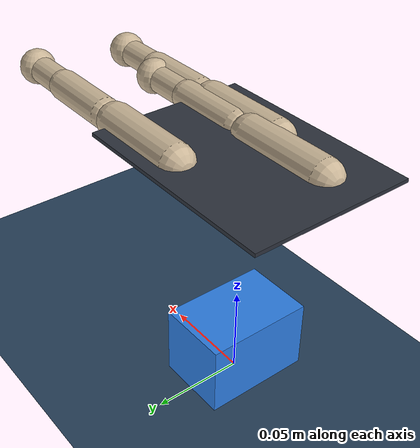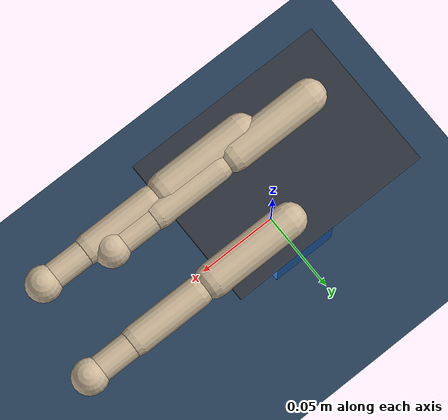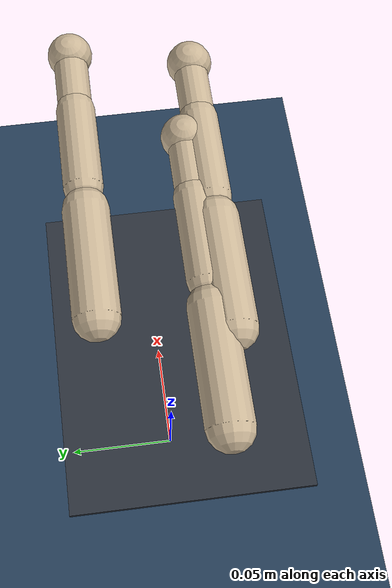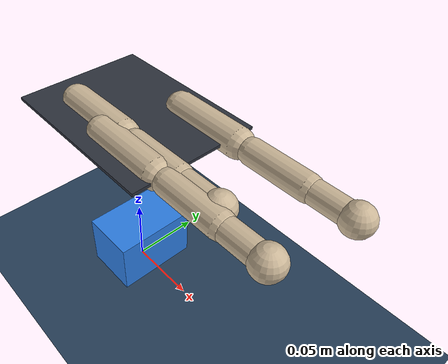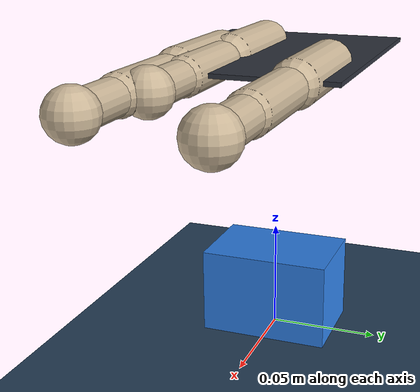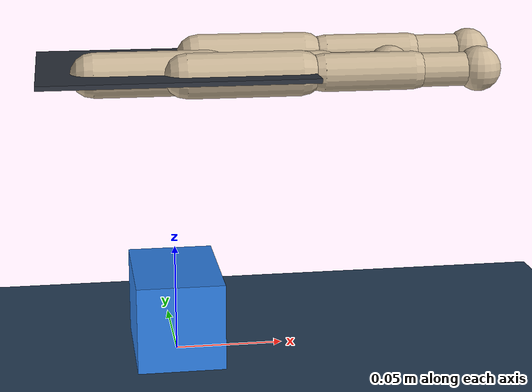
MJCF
<mujoco model="scene_prism2_tn0d0054p0d0109p0d0107_ip0d0147n0d0019p0d0104_mp0d0043p0d0052p0d0098">
  <compiler angle="radian" autolimits="true" />
  <option timestep="0.002" gravity="0 0 -9.81" integrator="implicitfast" />
  <visual>
    <headlight ambient=".4 .4 .4" diffuse=".8 .8 .8" specular="0.1 0.1 0.1" />
    <map znear=".01" />
    <quality shadowsize="2048" />
    <global elevation="-15" />
  </visual>
  <default>
    <geom friction="1.0 0.05 0.001" solref="0.01 1" solimp="0.95 0.99 0.001" />
    <motor ctrlrange="-1 1" ctrllimited="true" />
    <default class="pose">
      <joint damping="2.0" armature="0.01" />
      <position kp="4000" kv="100" forcerange="-1000 1000" />
    </default>
    <default class="ctrl">
      <joint damping="0.5" armature="0.001" />
      <position kp="30" kv="0.5" gear="1" forcerange="-10 10" ctrlrange="-1 1" />
    </default>
  </default>
  <asset>
    <texture type="skybox" builtin="gradient" rgb1="0.3 0.5 0.7" rgb2="0 0 0" width="512" height="3072" />
    <texture type="2d" name="groundplane" builtin="checker" mark="edge" rgb1="0.2 0.3 0.4" rgb2="0.1 0.2 0.3" markrgb="0.8 0.8 0.8" width="300" height="300" />
    <material name="groundplane" texture="groundplane" texuniform="true" texrepeat="5 5" reflectance="0.2" />
    <texture name="grid" type="2d" builtin="checker" rgb1="0.15 0.15 0.15" rgb2="0.25 0.25 0.25" width="256" height="256" />
    <material name="table_mat" texture="grid" texrepeat="3 3" reflectance="0.2" />
    <material name="palm_mat" rgba="0.18 0.2 0.24 1" />
    <material name="finger_mat" rgba="0.8 0.72 0.6 1" />
    <material name="object_mat" rgba="0.18 0.5 0.9 1" />
  </asset>
  <worldbody>
    <light pos="0 0 1.5" dir="0 0 -1" directional="true" diffuse=".6 .6 .6" specular=".2 .2 .2" />
    <light pos="0.5 0.5 1.0" dir="-1 -1 -1" directional="true" diffuse=".4 .4 .4" specular=".1 .1 .1" />
    <geom name="floor" type="plane" size="1.5 1.5 0.1" material="groundplane" />
    <body name="cube" pos="0.000000 0.000000 0.020000">
      <freejoint />
      <geom type="box" size="0.020000 0.030000 0.020000" density="500" material="object_mat" />
    </body>
    <body gravcomp="1" name="palm_pose" pos="0 0 0.134">
      <joint class="pose" name="palm_px" type="slide" axis="1 0 0" range="-0.20 0.20" />
      <joint class="pose" name="palm_py" type="slide" axis="0 1 0" range="-0.20 0.20" />
      <joint class="pose" name="palm_pz" type="slide" axis="0 0 1" range="-0.15 0.35" />
      <joint class="pose" name="palm_rx" type="hinge" axis="1 0 0" range="-1.57 1.57" />
      <joint class="pose" name="palm_ry" type="hinge" axis="0 1 0" range="-1.57 1.57" />
      <joint class="pose" name="palm_rz" type="hinge" axis="0 0 1" range="-3.14 3.14" />
      <geom type="box" size="0.06 0.045 0.001" material="palm_mat" />
      <body name="thumb_mount" pos="-0.035388 -0.017105 0">
        <inertial pos="0 0 0" mass="0.001" diaginertia="1e-6 1e-6 1e-6" />
        <body name="thumb_yaw_frame">
          <inertial pos="0 0 0" mass="0.001" diaginertia="1e-6 1e-6 1e-6" />
          <joint class="ctrl" name="thumb_yaw" type="hinge" axis="1 0 0" range="-1.1 1.1" />
          <body name="thumb_mcp_frame">
            <joint class="ctrl" name="thumb_mcp" type="hinge" axis="0 1 0" range="0 3.14" />
            <geom type="capsule" fromto="0 0 0 0.05 0 0" size="0.010" material="finger_mat" />
            <body name="thumb_len_frame" pos="0.060706 0 0">
              <geom type="capsule" fromto="0 0 0 0.04 0 0" size="0.0085" material="finger_mat" />
              <body name="thumb_pip_frame" pos="0.04 0 0">
                <joint class="ctrl" name="thumb_pip" type="hinge" axis="0 1 0" range="-1.2 0.5" />
                <geom type="capsule" fromto="0 0 0 0.03 0 0" size="0.0075" material="finger_mat" />
                <body name="thumb_tip" pos="0.03 0 0">
                  <geom type="sphere" size="0.010" material="finger_mat" />
                </body>
              </body>
            </body>
          </body>
        </body>
      </body>
      <body name="index_mount" pos="0.014669 0.028112 0">
        <inertial pos="0 0 0" mass="0.001" diaginertia="1e-6 1e-6 1e-6" />
        <body name="index_yaw_frame">
          <inertial pos="0 0 0" mass="0.001" diaginertia="1e-6 1e-6 1e-6" />
          <joint class="ctrl" name="index_yaw" type="hinge" axis="1 0 0" range="-1.1 1.1" />
          <body name="index_mcp_frame">
            <joint class="ctrl" name="index_mcp" type="hinge" axis="0 1 0" range="0 2.5" />
            <geom type="capsule" fromto="0 0 0 0.05 0 0" size="0.010" material="finger_mat" />
            <body name="index_len_frame" pos="0.06045 0 0">
              <geom type="capsule" fromto="0 0 0 0.04 0 0" size="0.0085" material="finger_mat" />
              <body name="index_pip_frame" pos="0.04 0 0">
                <joint class="ctrl" name="index_pip" type="hinge" axis="0 1 0" range="-1.2 1.57" />
                <geom type="capsule" fromto="0 0 0 0.03 0 0" size="0.0075" material="finger_mat" />
                <body name="index_tip" pos="0.03 0 0">
                  <geom type="sphere" size="0.010" material="finger_mat" />
                </body>
              </body>
            </body>
          </body>
        </body>
      </body>
      <body name="middle_mount" pos="0.00427 -0.02478 0">
        <inertial pos="0 0 0" mass="0.001" diaginertia="1e-6 1e-6 1e-6" />
        <body name="middle_yaw_frame">
          <inertial pos="0 0 0" mass="0.001" diaginertia="1e-6 1e-6 1e-6" />
          <joint class="ctrl" name="middle_yaw" type="hinge" axis="1 0 0" range="-1.1 1.1" />
          <body name="middle_mcp_frame">
            <joint class="ctrl" name="middle_mcp" type="hinge" axis="0 1 0" range="0 2.5" />
            <geom type="capsule" fromto="0 0 0 0.05 0 0" size="0.010" material="finger_mat" />
            <body name="middle_len_frame" pos="0.059838 0 0">
              <geom type="capsule" fromto="0 0 0 0.04 0 0" size="0.0085" material="finger_mat" />
              <body name="middle_pip_frame" pos="0.04 0 0">
                <joint class="ctrl" name="middle_pip" type="hinge" axis="0 1 0" range="-1.2 1.57" />
                <geom type="capsule" fromto="0 0 0 0.03 0 0" size="0.0075" material="finger_mat" />
                <body name="middle_tip" pos="0.03 0 0">
                  <geom type="sphere" size="0.010" material="finger_mat" />
                </body>
              </body>
            </body>
          </body>
        </body>
      </body>
    </body>
  </worldbody>
  <actuator>
    <position class="pose" name="a_palm_px" joint="palm_px" ctrlrange="-0.20 0.20" />
    <position class="pose" name="a_palm_py" joint="palm_py" ctrlrange="-0.20 0.20" />
    <position class="pose" name="a_palm_pz" joint="palm_pz" ctrlrange="-0.15 0.35" />
    <position class="pose" name="a_palm_rx" joint="palm_rx" ctrlrange="-1.57 1.57" />
    <position class="pose" name="a_palm_ry" joint="palm_ry" ctrlrange="-1.57 1.57" />
    <position class="pose" name="a_palm_rz" joint="palm_rz" ctrlrange="-3.14 3.14" />
    <position class="ctrl" name="a_thumb_yaw" joint="thumb_yaw" ctrlrange="-1.1 1.1" />
    <position class="ctrl" name="a_thumb_mcp" joint="thumb_mcp" ctrlrange="0 3.14" />
    <position class="ctrl" name="a_thumb_pip" joint="thumb_pip" ctrlrange="-1.2 0.5" />
    <position class="ctrl" name="a_index_yaw" joint="index_yaw" ctrlrange="-1.1 1.1" />
    <position class="ctrl" name="a_index_mcp" joint="index_mcp" ctrlrange="0 2.5" />
    <position class="ctrl" name="a_index_pip" joint="index_pip" ctrlrange="-1.2 1.57" />
    <position class="ctrl" name="a_middle_yaw" joint="middle_yaw" ctrlrange="-1.1 1.1" />
    <position class="ctrl" name="a_middle_mcp" joint="middle_mcp" ctrlrange="0 2.5" />
    <position class="ctrl" name="a_middle_pip" joint="middle_pip" ctrlrange="-1.2 1.57" />
  </actuator>
  <keyframe>
    <key name="open" qpos="&#10;        0 0 0.02 1 0 0 0 0.02 0 0 0 0 0 0 2 -0.707 0 1.25 1 0 1.25 1&#10;      " ctrl="&#10;        0.02 0 0 0 0 0 0 2 -0.707 0 1.25 1 0 1.25 1&#10;      " />
    <key name="foundational" qpos="&#10;        0.002826666098 -0.003369847137 0.01999413388 0.9730111332 -9.568488137e-05 1.829373927e-06 -0.2307581535 0.01972315807 2.223744229e-05 0.001143638626 -1.055249399e-05 0.0001134462364 -4.882642332e-06 0.04955734917 1.847308802 -0.5717740087 0.05288656978 1.459422755 1.184235237 -0.199573252 1.534001404 1.118883415&#10;      " ctrl="&#10;        0.02 0 0 0 0 0 0.04759260414 1.838513475 -0.5715285052 0.05293271743 1.45939719 1.184301786 -0.1994262222 1.534226074 1.118972875&#10;      " />
  </keyframe>
</mujoco>
